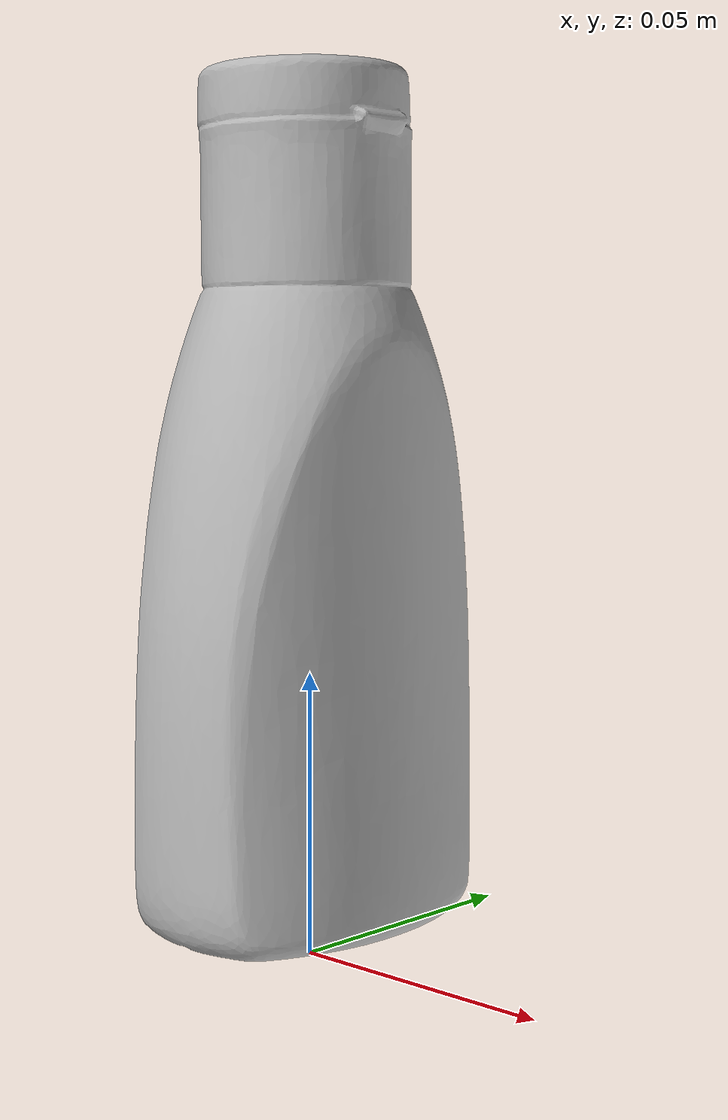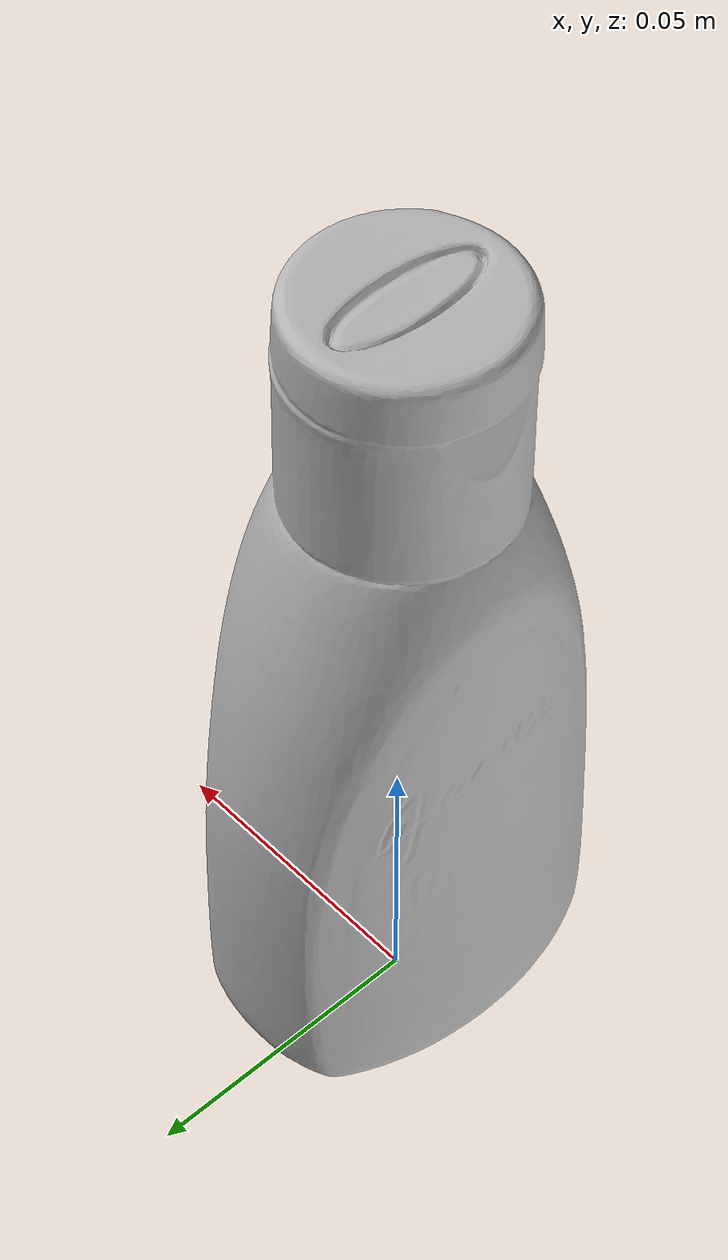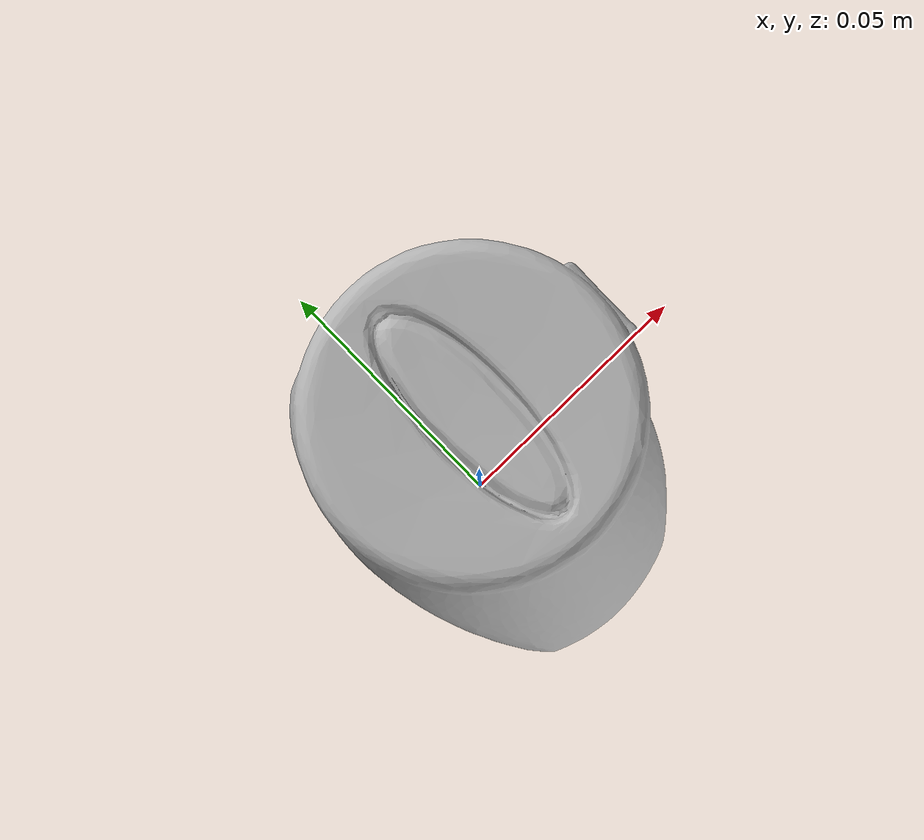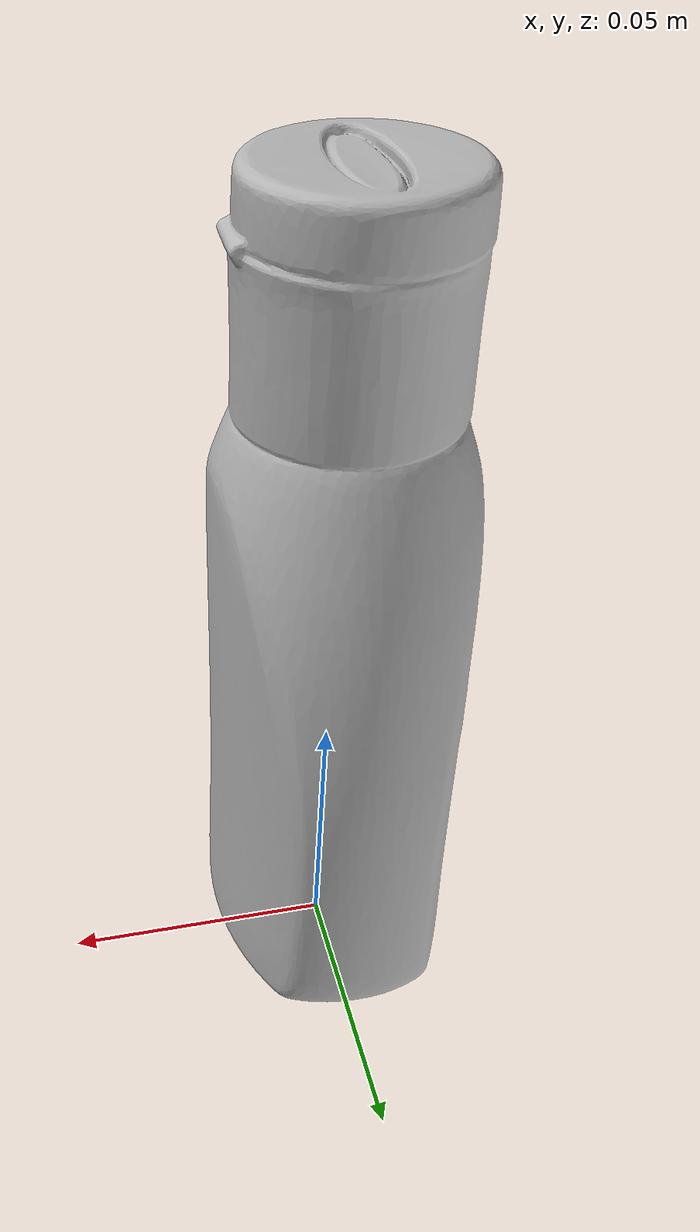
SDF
<?xml version="1.0" ?>
<sdf version="1.7">
    <model name="Ketchup">
        <link name="body_ketchup">
            <inertial>
                <pose>0 0 0.05 0 0 0</pose>
                <mass>0.1</mass>
                <inertia>
                    <ixx>0.0001</ixx>
                    <iyy>0.0001</iyy>
                    <izz>0.0001</izz>
                </inertia>
            </inertial>
            <visual name="visual">
                <pose>0 0 0.08 1.5707963 0 -1.5708</pose>
                <geometry>
                    <mesh>
                        <uri>Ketchup.obj</uri>
                        <scale>0.01 0.01 0.01</scale>
                    </mesh>
                </geometry>
            </visual>
            <collision name="collision">
                <pose>0 0.0 0.085 0 0 -1.5708</pose>
                <geometry>
                    <box>
                        <size>0.07 0.04 0.15</size>
                    </box>
                </geometry>
            </collision>
        </link>
    <static>0</static>
    </model>
</sdf>
